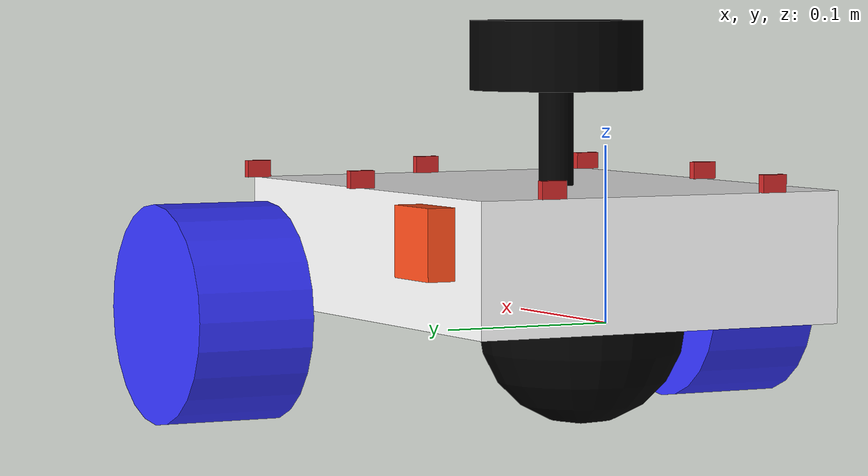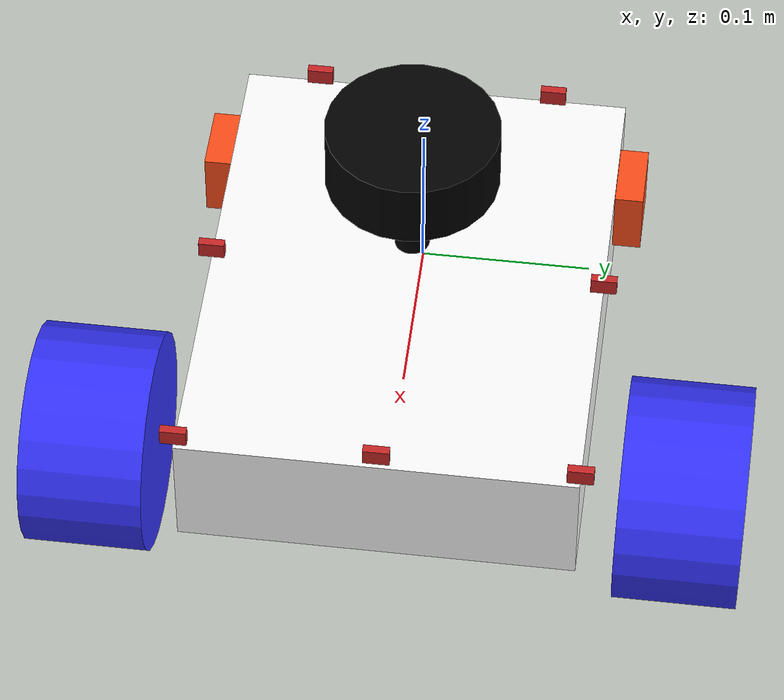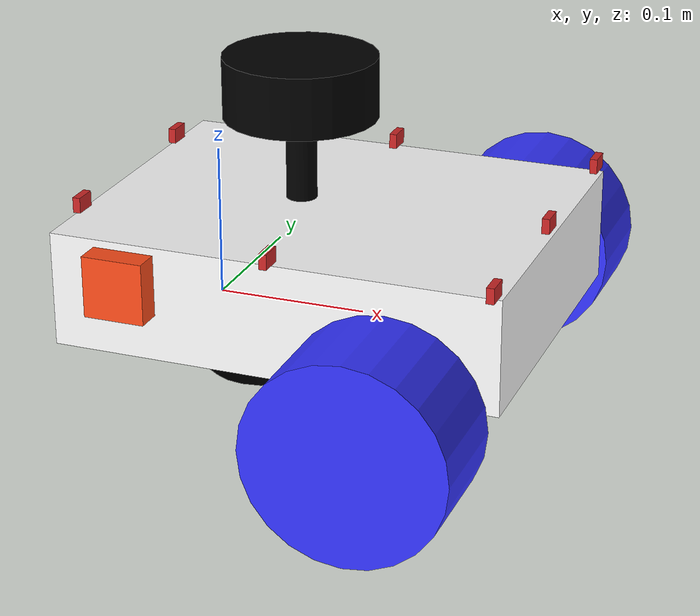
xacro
<?xml version="1.0"?>
<robot xmlns:xacro="http://www.ros.org/wiki/xacro"  name="robot">

    <xacro:arg name="use_ros2_control" default="true"/>
    <xacro:arg name="sim_mode" default="false"/>

    <xacro:include filename="robot_core.xacro" />

    <xacro:if value="$(arg use_ros2_control)">
        <xacro:include filename="ros2_control.xacro" />
    </xacro:if>
    <xacro:unless value="$(arg use_ros2_control)">
        <xacro:include filename="gazebo_control.xacro" />
    </xacro:unless>
    <xacro:include filename="sensors.xacro" />
    <xacro:include filename="lidar.xacro" />

</robot>

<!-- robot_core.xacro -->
<robot xmlns:xacro="http://www.ros.org/wiki/xacro" >

    <xacro:include filename="inertial_macros.xacro"/>

    <material name="white">
        <color rgba="1 1 1 1" />
    </material>

    <material name="orange">
        <color rgba="1 0.3 0.1 1"/>
    </material>

    <material name="blue">
        <color rgba="0.2 0.2 1 1"/>
    </material>

    <material name="black">
        <color rgba="0 0 0 1"/>
    </material>

    <!-- BASE LINK -->

    <link name="base_link">

    </link>

    <!-- BASE_FOOTPRINT LINK -->

    <joint name="base_footprint_joint" type="fixed">
        <parent link="base_link"/>
        <child link="base_footprint"/>
        <origin xyz="0 0 0" rpy="0 0 0"/>
    </joint>

    <link name="base_footprint">
    </link>

    <!-- CHASSIS LINK -->

    <joint name="chassis_joint" type="fixed">
        <parent link="base_link"/>
        <child link="chassis"/>
        <origin xyz="-0.064 0 0"/>
    </joint>

    <link name="chassis">
        <visual>
            <origin xyz="0.146065 0 0.0375"/>
            <geometry>
                <box size="0.29213 0.227 0.075"/>
            </geometry>
            <material name="white"/>
        </visual>
        <collision>
            <origin xyz="0.15 0 0.075"/>
            <geometry>
                <box size="0.29213 0.227 0.075"/>
            </geometry>
        </collision>
        <!-- Increased mass for stability -->
    <xacro:inertial_box mass="5.0" x="0.29213" y="0.227" z="0.075">
      <origin xyz="0.146065 0 0.0375" rpy="0 0 0"/>
    </xacro:inertial_box>
  </link>

    <gazebo reference="chassis">
        <material>Gazebo/White</material>
    </gazebo>

    <!-- LEFT WHEEL LINK -->

    <joint name="left_wheel_joint" type="continuous">
        <parent link="base_link"/>
        <child link="left_wheel"/>
        <origin xyz="0.16413 0.17 0" rpy="-${pi/2} 0 0" />
        <axis xyz="0 0 1"/>
    </joint>

    <link name="left_wheel">
        <visual>
            <geometry>
                <cylinder radius="0.064" length="0.071"/>
            </geometry>
            <material name="blue"/>
        </visual>
        <collision>
            <geometry>
                <sphere radius="0.064"/>
            </geometry>
        </collision>
        <!-- realistic small wheel mass -->
    <xacro:inertial_cylinder mass="0.4" length="0.04" radius="0.064">
      <origin xyz="0 0 0" rpy="0 0 0"/>
    </xacro:inertial_cylinder>
  </link>

    <gazebo reference="left_wheel">
        <material>Gazebo/Blue</material>
    </gazebo>

    <!-- RIGHT WHEEL LINK -->

    <joint name="right_wheel_joint" type="continuous">
        <parent link="base_link"/>
        <child link="right_wheel"/>
        <origin xyz="0.16413 -0.17 0" rpy="${pi/2} 0 0" />
        <axis xyz="0 0 -1"/>
    </joint>

    <link name="right_wheel">
        <visual>
            <geometry>
                <cylinder radius="0.064" length="0.071"/>
            </geometry>
            <material name="blue"/>
        </visual>
        <collision>
            <geometry>
                <sphere radius="0.064"/>
            </geometry>
        </collision>
        <xacro:inertial_cylinder mass="0.4" length="0.04" radius="0.064">
      <origin xyz="0 0 0" rpy="0 0 0"/>
    </xacro:inertial_cylinder>
  </link>

    <gazebo reference="right_wheel">
        <material>Gazebo/Blue</material>
    </gazebo>

    <!--  UWB MODULES (Left & Right) -->

    <!-- LEFT UWB MODULE -->
    <joint name="uwb_left_joint" type="fixed">
        <parent link="chassis"/>
        <!-- Position slightly behind left wheel -->
        <child link="uwb_left"/>
        <origin xyz="0.05 0.12 0.05" rpy="0 0 0"/>
    </joint>

    <link name="uwb_left">
        <visual>
            <geometry>
                <!-- Approximate UWB tag as a small box -->
                <box size="0.04 0.02 0.04"/>
            </geometry>
            <material name="orange"/>
        </visual>
        <collision>
            <geometry>
                <box size="0.04 0.04 0.02"/>
            </geometry>
        </collision>
        <xacro:inertial_box mass="0.05" x="0.04" y="0.04" z="0.02">
            <origin xyz="0 0 0" rpy="0 0 0"/>
        </xacro:inertial_box>
    </link>

    <gazebo reference="uwb_left">
        <material>Gazebo/Orange</material>
    </gazebo>

    <!-- RIGHT UWB MODULE -->
    <joint name="uwb_right_joint" type="fixed">
        <parent link="chassis"/>
        <!-- Position slightly behind right wheel -->
        <child link="uwb_right"/>
        <origin xyz="0.05 -0.12 0.05" rpy="0 0 0"/>
    </joint>

    <link name="uwb_right">
        <visual>
            <geometry>
                <box size="0.04 0.02 0.04"/>
            </geometry>
            <material name="orange"/>
        </visual>
        <collision>
            <geometry>
                <box size="0.04 0.04 0.02"/>
            </geometry>
        </collision>
        <xacro:inertial_box mass="0.05" x="0.04" y="0.04" z="0.02">
            <origin xyz="0 0 0" rpy="0 0 0"/>
        </xacro:inertial_box>
    </link>

    <gazebo reference="uwb_right">
        <material>Gazebo/Orange</material>
    </gazebo>

    <!-- CASTER WHEEL LINK -->

    <joint name="caster_wheel_joint" type="fixed">
        <parent link="chassis"/>
        <child link="caster_wheel"/>
        <origin xyz="0.09213 0 0"/>
    </joint>

    <link name="caster_wheel">
        <visual>
            <geometry>
                <sphere radius="0.06"/>
            </geometry>
            <material name="black"/>
        </visual>
        <collision>
            <geometry>
                <sphere radius="0.06"/>
            </geometry>
        </collision>
        <xacro:inertial_sphere mass="0.2" radius="0.06">
            <origin xyz="0 0 0" rpy="0 0 0"/>
        </xacro:inertial_sphere>
    </link>

    <gazebo reference="caster_wheel">
        <material>Gazebo/Black</material>
        <mu1 value="0.001"/>
        <mu2 value="0.001"/>
    </gazebo>

</robot>

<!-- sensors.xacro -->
<robot xmlns:xacro="http://www.ros.org/wiki/xacro">

  <!-- FRONT CENTER IR SENSOR -->
  <joint name="ir_front_center_joint" type="fixed">
    <origin xyz="0.287 0 0.08" rpy="0 0 0"/>
    <parent link="chassis"/>
    <child link="base_ir_front_center"/>
  </joint>

  <link name="base_ir_front_center">
    <visual>
      <geometry>
        <box size="0.005 0.015 0.01"/>
      </geometry>
    </visual>
    <collision>
      <geometry>
        <box size="0.005 0.015 0.01"/>
      </geometry>
    </collision>
    <inertial>
      <mass value="1e-5"/>
      <inertia ixx="1e-6" ixy="0" ixz="0" iyy="1e-6" iyz="0" izz="1e-6"/>
    </inertial>
  </link>

  <gazebo reference="base_ir_front_center">
    <material>Gazebo/Red</material>
    <sensor type="ray" name="ir_front_center_sensor">
      <pose>0 0 0 0 0 0</pose>
      <visualize>true</visualize>
      <update_rate>50</update_rate>
      <ray>
        <scan>
          <horizontal>
            <samples>10</samples>
            <resolution>1.0</resolution>
            <min_angle>-0.218</min_angle>
            <max_angle>0.218</max_angle>
          </horizontal>
          <vertical>
            <samples>1</samples>
            <resolution>1.0</resolution>
            <min_angle>0</min_angle>
            <max_angle>0</max_angle>
          </vertical>
        </scan>
        <range>
          <min>0.01</min>
          <max>0.8</max>
          <resolution>0.02</resolution>
        </range>
      </ray>
      <plugin name="gazebo_ros_range_front_center" filename="libgazebo_ros_ray_sensor.so">
        <gaussianNoise>0.005</gaussianNoise>
        <updateRate>50</updateRate>
        <topicName>/sensor/ir_front_center</topicName>
        <frameName>base_ir_front_center</frameName>
        <radiation>INFRARED</radiation>
      </plugin>
    </sensor>
  </gazebo>

  <!-- FRONT LEFT IR SENSOR -->
  <joint name="ir_front_left_joint" type="fixed">
    <origin xyz="0.287 0.1135 0.08" rpy="0 0 0"/> <!-- ~15° outward -->
    <parent link="chassis"/>
    <child link="base_ir_front_left"/>
  </joint>

  <link name="base_ir_front_left">
    <visual>
      <geometry>
        <box size="0.005 0.015 0.01"/>
      </geometry>
    </visual>
    <collision>
      <geometry>
        <box size="0.005 0.015 0.01"/>
      </geometry>
    </collision>
    <inertial>
      <mass value="1e-5"/>
      <inertia ixx="1e-6" ixy="0" ixz="0" iyy="1e-6" iyz="0" izz="1e-6"/>
    </inertial>
  </link>

  <gazebo reference="base_ir_front_left">
    <material>Gazebo/Red</material>
    <sensor type="ray" name="ir_front_left_sensor">
      <pose>0 0 0 0 0 0.79</pose>
      <visualize>true</visualize>
      <update_rate>50</update_rate>
      <ray>
        <scan>
          <horizontal>
            <samples>10</samples>
            <resolution>1.0</resolution>
            <min_angle>0.572</min_angle>
            <max_angle>1.008</max_angle>
          </horizontal>
          <vertical>
            <samples>1</samples>
            <resolution>1.0</resolution>
            <min_angle>0</min_angle>
            <max_angle>0</max_angle>
          </vertical>
        </scan>
        <range>
          <min>0.01</min>
          <max>0.8</max>
          <resolution>0.02</resolution>
        </range>
      </ray>
      <plugin name="gazebo_ros_range_front_left" filename="libgazebo_ros_ray_sensor.so">
        <gaussianNoise>0.005</gaussianNoise>
        <updateRate>50</updateRate>
        <topicName>/sensor/ir_front_left</topicName>
        <frameName>base_ir_front_left</frameName>
        <radiation>INFRARED</radiation>
      </plugin>
    </sensor>
  </gazebo>

  <!-- FRONT RIGHT IR SENSOR -->
  <joint name="ir_front_right_joint" type="fixed">
    <origin xyz="0.287 -0.1135 0.08" rpy="0 0 0"/> <!-- ~15° outward -->
    <parent link="chassis"/>
    <child link="base_ir_front_right"/>
  </joint>

  <link name="base_ir_front_right">
    <visual>
      <geometry>
        <box size="0.005 0.015 0.01"/>
      </geometry>
    </visual>
    <collision>
      <geometry>
        <box size="0.005 0.015 0.01"/>
      </geometry>
    </collision>
    <inertial>
      <mass value="1e-5"/>
      <inertia ixx="1e-6" ixy="0" ixz="0" iyy="1e-6" iyz="0" izz="1e-6"/>
    </inertial>
  </link>

  <gazebo reference="base_ir_front_right">
    <material>Gazebo/Red</material>
    <sensor type="ray" name="ir_front_right_sensor">
      <pose>0 0 0 0 0 -0.79</pose>
      <visualize>true</visualize>
      <update_rate>50</update_rate>
      <ray>
        <scan>
          <horizontal>
            <samples>10</samples>
            <resolution>1.0</resolution>
            <min_angle>-0.572</min_angle>
            <max_angle>-1.008</max_angle>
          </horizontal>
          <vertical>
            <samples>1</samples>
            <resolution>1.0</resolution>
            <min_angle>0</min_angle>
            <max_angle>0</max_angle>
          </vertical>
        </scan>
        <range>
          <min>0.01</min>
          <max>0.8</max>
          <resolution>0.02</resolution>
        </range>
      </ray>
      <plugin name="gazebo_ros_range_front_right" filename="libgazebo_ros_ray_sensor.so">
        <gaussianNoise>0.005</gaussianNoise>
        <updateRate>50</updateRate>
        <topicName>/sensor/ir_front_right</topicName>
        <frameName>base_ir_front_right</frameName>
        <radiation>INFRARED</radiation>
      </plugin>
    </sensor>
  </gazebo>

  <!-- LEFT SIDE IR SENSOR -->
  <joint name="ir_left_joint" type="fixed">
    <origin xyz="0.146 0.1135 0.08" rpy="0 0 0"/> <!-- 90° rotated -->
    <parent link="chassis"/>
    <child link="base_ir_left"/>
  </joint>

  <link name="base_ir_left">
    <visual>
      <geometry>
        <box size="0.005 0.015 0.01"/>
      </geometry>
    </visual>
    <collision>
      <geometry>
        <box size="0.005 0.015 0.01"/>
      </geometry>
    </collision>
    <inertial>
      <mass value="1e-5"/>
      <inertia ixx="1e-6" ixy="0" ixz="0" iyy="1e-6" iyz="0" izz="1e-6"/>
    </inertial>
  </link>

  <gazebo reference="base_ir_left">
    <material>Gazebo/Red</material>
    <sensor type="ray" name="ir_left_sensor">
      <pose>0 0 0 0 0 1.57</pose>
      <visualize>true</visualize>
      <update_rate>50</update_rate>
      <ray>
        <scan>
          <horizontal>
            <samples>10</samples>
            <resolution>1.0</resolution>
<min_angle>1.352</min_angle>
<max_angle>1.788</max_angle>

          </horizontal>
          <vertical>
            <samples>1</samples>
            <resolution>1.0</resolution>
            <min_angle>0</min_angle>
            <max_angle>0</max_angle>
          </vertical>
        </scan>
        <range>
          <min>0.01</min>
          <max>0.8</max>
          <resolution>0.02</resolution>
        </range>
      </ray>
      <plugin name="gazebo_ros_range_left" filename="libgazebo_ros_ray_sensor.so">
        <gaussianNoise>0.005</gaussianNoise>
        <updateRate>50</updateRate>
        <topicName>/sensor/ir_left</topicName>
        <frameName>base_ir_left</frameName>
        <radiation>INFRARED</radiation>
      </plugin>
    </sensor>
  </gazebo>

  <!-- RIGHT SIDE IR SENSOR -->
  <joint name="ir_right_joint" type="fixed">
    <origin xyz="0.146 -0.1135 0.08" rpy="0 0 0"/> <!-- -90° rotated -->
    <parent link="chassis"/>
    <child link="base_ir_right"/>
  </joint>

  <link name="base_ir_right">
    <visual>
      <geometry>
        <box size="0.005 0.015 0.01"/>
      </geometry>
    </visual>
    <collision>
      <geometry>
        <box size="0.005 0.015 0.01"/>
      </geometry>
    </collision>
    <inertial>
      <mass value="1e-5"/>
      <inertia ixx="1e-6" ixy="0" ixz="0" iyy="1e-6" iyz="0" izz="1e-6"/>
    </inertial>
  </link>

  <gazebo reference="base_ir_right">
    <material>Gazebo/Red</material>
    <sensor type="ray" name="ir_right_sensor">
      <pose>0 0 0 0 0 -1.57</pose>
      <visualize>true</visualize>
      <update_rate>50</update_rate>
      <ray>
        <scan>
          <horizontal>
            <samples>10</samples>
            <resolution>1.0</resolution>
<min_angle>-1.352</min_angle>
<max_angle>-1.788</max_angle>
          </horizontal>
          <vertical>
            <samples>1</samples>
            <resolution>1.0</resolution>
            <min_angle>0</min_angle>
            <max_angle>0</max_angle>
          </vertical>
        </scan>
        <range>
          <min>0.01</min>
          <max>0.8</max>
          <resolution>0.02</resolution>
        </range>
      </ray>
      <plugin name="gazebo_ros_range_right" filename="libgazebo_ros_ray_sensor.so">
        <gaussianNoise>0.005</gaussianNoise>
        <updateRate>50</updateRate>
        <topicName>/sensor/ir_right</topicName>
        <frameName>base_ir_right</frameName>
        <radiation>INFRARED</radiation>
      </plugin>
    </sensor>
  </gazebo>

  <!-- REAR LEFT IR SENSOR -->
  <joint name="ir_back_left_joint" type="fixed">
    <origin xyz="0 0.07 0.08" rpy="0 0 0"/> <!-- 180° rotated -->
    <parent link="chassis"/>
    <child link="base_ir_back_left"/>
  </joint>

  <link name="base_ir_back_left">
    <visual>
      <geometry>
        <box size="0.005 0.015 0.01"/>
      </geometry>
    </visual>
    <collision>
      <geometry>
        <box size="0.005 0.015 0.01"/>
      </geometry>
    </collision>
    <inertial>
      <mass value="1e-5"/>
      <inertia ixx="1e-6" ixy="0" ixz="0" iyy="1e-6" iyz="0" izz="1e-6"/>
    </inertial>
  </link>

  <gazebo reference="base_ir_back_left">
    <material>Gazebo/Red</material>
    <sensor type="ray" name="ir_back_left_sensor">
      <pose>0 0 0 0 0 3.14</pose>
      <visualize>true</visualize>
      <update_rate>50</update_rate>
      <ray>
        <scan>
          <horizontal>
            <samples>10</samples>
            <resolution>1.0</resolution>
            <min_angle>2.922</min_angle>
            <max_angle>3.358</max_angle>
          </horizontal>
          <vertical>
            <samples>1</samples>
            <resolution>1.0</resolution>
            <min_angle>0</min_angle>
            <max_angle>0</max_angle>
          </vertical>
        </scan>
        <range>
          <min>0.01</min>
          <max>0.8</max>
          <resolution>0.02</resolution>
        </range>
      </ray>
      <plugin name="gazebo_ros_range_back_left" filename="libgazebo_ros_ray_sensor.so">
        <gaussianNoise>0.005</gaussianNoise>
        <updateRate>50</updateRate>
        <topicName>/sensor/ir_back_left</topicName>
        <frameName>base_ir_back_left</frameName>
        <radiation>INFRARED</radiation>
      </plugin>
    </sensor>
  </gazebo>

  <!-- REAR RIGHT IR SENSOR -->
  <joint name="ir_back_right_joint" type="fixed">
    <origin xyz="0 -0.07 0.08" rpy="0 0 0"/> <!-- also rotated 180° -->
    <parent link="chassis"/>
    <child link="base_ir_back_right"/>
  </joint>

  <link name="base_ir_back_right">
    <visual>
      <geometry>
        <box size="0.005 0.015 0.01"/>
      </geometry>
    </visual>
    <collision>
      <geometry>
        <box size="0.005 0.015 0.01"/>
      </geometry>
    </collision>
    <inertial>
      <mass value="1e-5"/>
      <inertia ixx="1e-6" ixy="0" ixz="0" iyy="1e-6" iyz="0" izz="1e-6"/>
    </inertial>
  </link>

  <gazebo reference="base_ir_back_right">
  <material>Gazebo/Red</material>
  <sensor type="ray" name="ir_back_right_sensor">
    <pose>0 0 0 0 0 3.14</pose>
    <visualize>true</visualize>
    <update_rate>50</update_rate>
    <ray>
      <scan>
        <horizontal>
          <samples>2</samples> <!-- single ray for Range -->
          <resolution>1.0</resolution>
          <min_angle>2.922</min_angle>
            <max_angle>3.358</max_angle>
        </horizontal>
        <vertical>
          <samples>1</samples>
          <resolution>1.0</resolution>
          <min_angle>0</min_angle>
          <max_angle>0</max_angle>
        </vertical>
      </scan>
      <range>
        <min>0.01</min>
        <max>0.8</max>
        <resolution>0.02</resolution>
      </range>
    </ray>

    <!-- Use gazebo_ros_range plugin -->
    <plugin name="gazebo_ros_range_back_right" filename="libgazebo_ros_ray_sensor.so">
      <topicName>/sensor/ir_back_right</topicName>
      <frameName>base_ir_back_right</frameName>
      <updateRate>50</updateRate>
      <radiation>INFRARED</radiation>
      <gaussianNoise>0.005</gaussianNoise>
    </plugin>
  </sensor>
</gazebo>

</robot>

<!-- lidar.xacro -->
<robot xmlns:xacro="http://www.ros.org/wiki/xacro" >

    <joint name="laser_joint" type="fixed">
        <parent link="chassis"/>
        <child link="laser_frame"/>
        <origin xyz="0.122 0 0.15" rpy="0 0 0"/>
    </joint>

    <link name="laser_frame">
        <visual>
            <geometry>
                <cylinder radius="0.05" length="0.04"/>
            </geometry>
            <material name="black"/>
        </visual>
        <visual>
            <origin xyz="0 0 -0.05"/>
            <geometry>
                <cylinder radius="0.01" length="0.1"/>
            </geometry>
            <material name="black"/>
        </visual>
        <collision>
            <geometry>
                <cylinder radius="0.05" length="0.04"/>
            </geometry>
        </collision>
        <xacro:inertial_cylinder mass="0.1" length="0.04" radius="0.05">
            <origin xyz="0 0 0" rpy="0 0 0"/>
        </xacro:inertial_cylinder>
    </link>

    <gazebo reference="laser_frame">
        <material>Gazebo/Black</material>

        <sensor name="laser" type="ray">
            <pose> 0 0 0 0 0 0 </pose>
            <visualize>false</visualize>
            <update_rate>10</update_rate>
            <ray>
                <scan>
                    <horizontal>
                        <samples>8</samples>
                        <min_angle>-3.14</min_angle>
                        <max_angle>3.14</max_angle>
                    </horizontal>
                </scan>
                <range>
                    <min>0.2</min>
                    <max>1</max>
                </range>
            </ray>
            <plugin name="laser_controller" filename="libgazebo_ros_ray_sensor.so">
                <ros>
                    <argument>~/out:=scan</argument>
                </ros>
                <output_type>sensor_msgs/LaserScan</output_type>
                <frame_name>laser_frame</frame_name>
            </plugin>
        </sensor>
    </gazebo>

</robot>
